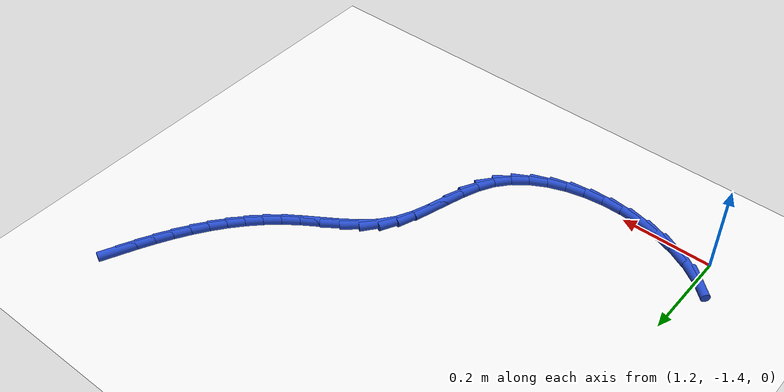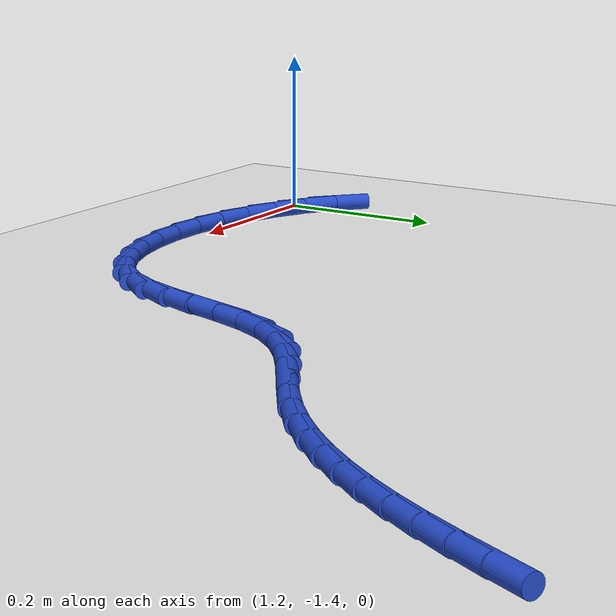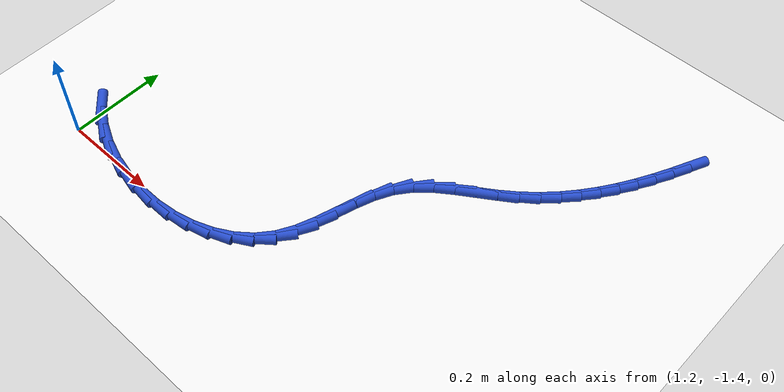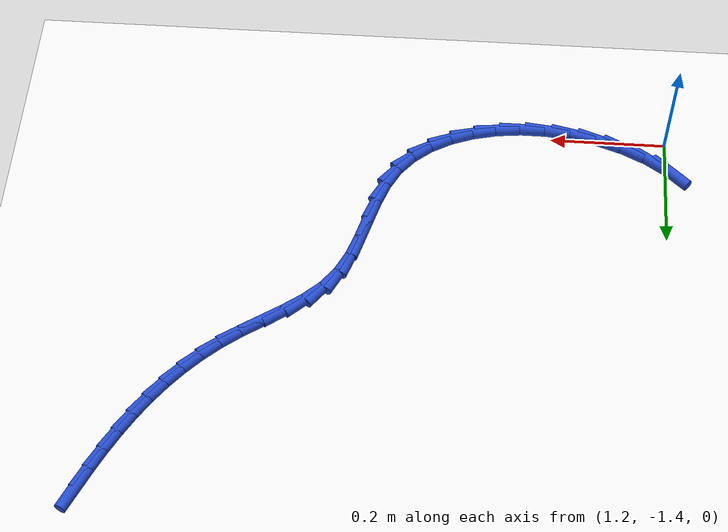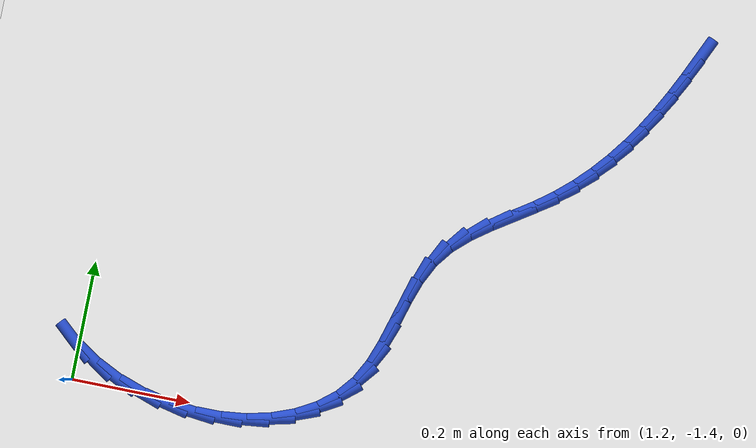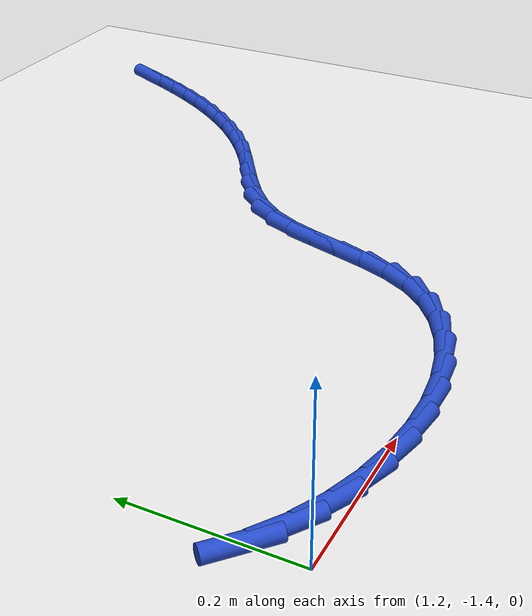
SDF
<sdf version="1.6">
 <world name="default">
  <model name="ground_plane">
   <static>1</static>
   <link name="link">
    <collision name="collision">
     <geometry><plane><normal>0 0 1</normal><size>100 100</size></plane></geometry>
     <surface><friction><ode><mu>100</mu><mu2>50</mu2></ode></friction></surface>
    </collision>
    <visual name="visual">
     <cast_shadows>0</cast_shadows>
     <geometry><plane><normal>0 0 1</normal><size>100 100</size></plane></geometry>
     <material>
      <script><uri>file://media/materials/scripts/gazebo.material</uri><name>Gazebo/WhiteGlow</name></script>
     </material>
    </visual>
   </link>
  </model>
  <model name="line">
   <link name="link_116">
    <pose>2.1239932550588185 -0.6725731313570082 0.01 0 1.57 1.1380755817345747</pose>
    <collision name="collision">
     <geometry><cylinder><radius>0.01</radius><length>0.08</length></cylinder></geometry>
    </collision>
    <visual name="visual">
     <material>
      <script><name>Gazebo/Blue</name><uri>file://media/materials/scripts/gazebo.material</uri></script>
     </material>
     <geometry><cylinder><radius>0.01</radius><length>0.08</length></cylinder></geometry>
    </visual>
   </link>
   <link name="link_117">
    <pose>2.107798793973246 -0.7076322883685389 0.01 0 1.57 1.1090206336675479</pose>
    <collision name="collision">
     <geometry><cylinder><radius>0.01</radius><length>0.08</length></cylinder></geometry>
    </collision>
    <visual name="visual">
     <material>
      <script><name>Gazebo/Blue</name><uri>file://media/materials/scripts/gazebo.material</uri></script>
     </material>
     <geometry><cylinder><radius>0.01</radius><length>0.08</length></cylinder></geometry>
    </visual>
   </link>
   <link name="link_118">
    <pose>2.0908712516702996 -0.7416464032183362 0.01 0 1.57 1.072852213556837</pose>
    <collision name="collision">
     <geometry><cylinder><radius>0.01</radius><length>0.08</length></cylinder></geometry>
    </collision>
    <visual name="visual">
     <material>
      <script><name>Gazebo/Blue</name><uri>file://media/materials/scripts/gazebo.material</uri></script>
     </material>
     <geometry><cylinder><radius>0.01</radius><length>0.08</length></cylinder></geometry>
    </visual>
   </link>
   <link name="link_119">
    <pose>2.072983260021669 -0.774550756353926 0.01 0 1.57 1.029499335430065</pose>
    <collision name="collision">
     <geometry><cylinder><radius>0.01</radius><length>0.08</length></cylinder></geometry>
    </collision>
    <visual name="visual">
     <material>
      <script><name>Gazebo/Blue</name><uri>file://media/materials/scripts/gazebo.material</uri></script>
     </material>
     <geometry><cylinder><radius>0.01</radius><length>0.08</length></cylinder></geometry>
    </visual>
   </link>
   <link name="link_120">
    <pose>2.0539074508990414 -0.8062806282228336 0.01 0 1.57 0.9790819455145351</pose>
    <collision name="collision">
     <geometry><cylinder><radius>0.01</radius><length>0.08</length></cylinder></geometry>
    </collision>
    <visual name="visual">
     <material>
      <script><name>Gazebo/Blue</name><uri>file://media/materials/scripts/gazebo.material</uri></script>
     </material>
     <geometry><cylinder><radius>0.01</radius><length>0.08</length></cylinder></geometry>
    </visual>
   </link>
   <link name="link_121">
    <pose>2.033416456174107 -0.8367712992725848 0.01 0 1.57 0.9219774723601423</pose>
    <collision name="collision">
     <geometry><cylinder><radius>0.01</radius><length>0.08</length></cylinder></geometry>
    </collision>
    <visual name="visual">
     <material>
      <script><name>Gazebo/Blue</name><uri>file://media/materials/scripts/gazebo.material</uri></script>
     </material>
     <geometry><cylinder><radius>0.01</radius><length>0.08</length></cylinder></geometry>
    </visual>
   </link>
   <link name="link_122">
    <pose>2.011282907718555 -0.8659580499507049 0.01 0 1.57 0.858876677376502</pose>
    <collision name="collision">
     <geometry><cylinder><radius>0.01</radius><length>0.08</length></cylinder></geometry>
    </collision>
    <visual name="visual">
     <material>
      <script><name>Gazebo/Blue</name><uri>file://media/materials/scripts/gazebo.material</uri></script>
     </material>
     <geometry><cylinder><radius>0.01</radius><length>0.08</length></cylinder></geometry>
    </visual>
   </link>
   <link name="link_123">
    <pose>1.9872794374040736 -0.8937761607047192 0.01 0 1.57 0.7908089557423772</pose>
    <collision name="collision">
     <geometry><cylinder><radius>0.01</radius><length>0.08</length></cylinder></geometry>
    </collision>
    <visual name="visual">
     <material>
      <script><name>Gazebo/Blue</name><uri>file://media/materials/scripts/gazebo.material</uri></script>
     </material>
     <geometry><cylinder><radius>0.01</radius><length>0.08</length></cylinder></geometry>
    </visual>
   </link>
   <link name="link_124">
    <pose>1.9611786771023536 -0.9201609119821539 0.01 0 1.57 0.7191174651919641</pose>
    <collision name="collision">
     <geometry><cylinder><radius>0.01</radius><length>0.08</length></cylinder></geometry>
    </collision>
    <visual name="visual">
     <material>
      <script><name>Gazebo/Blue</name><uri>file://media/materials/scripts/gazebo.material</uri></script>
     </material>
     <geometry><cylinder><radius>0.01</radius><length>0.08</length></cylinder></geometry>
    </visual>
   </link>
   <link name="link_125">
    <pose>1.9327532586850824 -0.9450475842305339 0.01 0 1.57 0.6454295224816669</pose>
    <collision name="collision">
     <geometry><cylinder><radius>0.01</radius><length>0.08</length></cylinder></geometry>
    </collision>
    <visual name="visual">
     <material>
      <script><name>Gazebo/Blue</name><uri>file://media/materials/scripts/gazebo.material</uri></script>
     </material>
     <geometry><cylinder><radius>0.01</radius><length>0.08</length></cylinder></geometry>
    </visual>
   </link>
   <link name="link_126">
    <pose>1.9017777347263474 -0.968372696288888 0.01 0 1.57 0.5871794453107585</pose>
    <collision name="collision">
     <geometry><cylinder><radius>0.01</radius><length>0.08</length></cylinder></geometry>
    </collision>
    <visual name="visual">
     <material>
      <script><name>Gazebo/Blue</name><uri>file://media/materials/scripts/gazebo.material</uri></script>
     </material>
     <geometry><cylinder><radius>0.01</radius><length>0.08</length></cylinder></geometry>
    </visual>
   </link>
   <link name="link_127">
    <pose>1.868607116459382 -0.990447023347555 0.01 0 1.57 0.5801430893037856</pose>
    <collision name="collision">
     <geometry><cylinder><radius>0.01</radius><length>0.08</length></cylinder></geometry>
    </collision>
    <visual name="visual">
     <material>
      <script><name>Gazebo/Blue</name><uri>file://media/materials/scripts/gazebo.material</uri></script>
     </material>
     <geometry><cylinder><radius>0.01</radius><length>0.08</length></cylinder></geometry>
    </visual>
   </link>
   <link name="link_128">
    <pose>1.8349891578512751 -1.012479324985035 0.01 0 1.57 0.628308352392877</pose>
    <collision name="collision">
     <geometry><cylinder><radius>0.01</radius><length>0.08</length></cylinder></geometry>
    </collision>
    <visual name="visual">
     <material>
      <script><name>Gazebo/Blue</name><uri>file://media/materials/scripts/gazebo.material</uri></script>
     </material>
     <geometry><cylinder><radius>0.01</radius><length>0.08</length></cylinder></geometry>
    </visual>
   </link>
   <link name="link_129">
    <pose>1.8028761889584788 -1.0358102631979658 0.01 0 1.57 0.7362776387020011</pose>
    <collision name="collision">
     <geometry><cylinder><radius>0.01</radius><length>0.08</length></cylinder></geometry>
    </collision>
    <visual name="visual">
     <material>
      <script><name>Gazebo/Blue</name><uri>file://media/materials/scripts/gazebo.material</uri></script>
     </material>
     <geometry><cylinder><radius>0.01</radius><length>0.08</length></cylinder></geometry>
    </visual>
   </link>
   <link name="link_130">
    <pose>1.7742205398374482 -1.0617804999829874 0.01 0 1.57 0.9103407091760679</pose>
    <collision name="collision">
     <geometry><cylinder><radius>0.01</radius><length>0.08</length></cylinder></geometry>
    </collision>
    <visual name="visual">
     <material>
      <script><name>Gazebo/Blue</name><uri>file://media/materials/scripts/gazebo.material</uri></script>
     </material>
     <geometry><cylinder><radius>0.01</radius><length>0.08</length></cylinder></geometry>
    </visual>
   </link>
   <link name="link_131">
    <pose>1.7509613878329795 -1.0917214079872386 0.01 0 1.57 1.104479815964058</pose>
    <collision name="collision">
     <geometry><cylinder><radius>0.01</radius><length>0.08</length></cylinder></geometry>
    </collision>
    <visual name="visual">
     <material>
      <script><name>Gazebo/Blue</name><uri>file://media/materials/scripts/gazebo.material</uri></script>
     </material>
     <geometry><cylinder><radius>0.01</radius><length>0.08</length></cylinder></geometry>
    </visual>
   </link>
   <link name="link_132">
    <pose>1.7336983757005673 -1.1260182884094774 0.01 0 1.57 1.2319267778283103</pose>
    <collision name="collision">
     <geometry><cylinder><radius>0.01</radius><length>0.08</length></cylinder></geometry>
    </collision>
    <visual name="visual">
     <material>
      <script><name>Gazebo/Blue</name><uri>file://media/materials/scripts/gazebo.material</uri></script>
     </material>
     <geometry><cylinder><radius>0.01</radius><length>0.08</length></cylinder></geometry>
    </visual>
   </link>
   <link name="link_133">
    <pose>1.7205551395433147 -1.1633077162725682 0.01 0 1.57 1.2900644213674926</pose>
    <collision name="collision">
     <geometry><cylinder><radius>0.01</radius><length>0.08</length></cylinder></geometry>
    </collision>
    <visual name="visual">
     <material>
      <script><name>Gazebo/Blue</name><uri>file://media/materials/scripts/gazebo.material</uri></script>
     </material>
     <geometry><cylinder><radius>0.01</radius><length>0.08</length></cylinder></geometry>
    </visual>
   </link>
   <link name="link_134">
    <pose>1.7093876132005612 -1.202037196850497 0.01 0 1.57 1.2852709694296485</pose>
    <collision name="collision">
     <geometry><cylinder><radius>0.01</radius><length>0.08</length></cylinder></geometry>
    </collision>
    <visual name="visual">
     <material>
      <script><name>Gazebo/Blue</name><uri>file://media/materials/scripts/gazebo.material</uri></script>
     </material>
     <geometry><cylinder><radius>0.01</radius><length>0.08</length></cylinder></geometry>
    </visual>
   </link>
   <link name="link_135">
    <pose>1.6980517305116476 -1.2406542354172505 0.01 0 1.57 1.2169871541361925</pose>
    <collision name="collision">
     <geometry><cylinder><radius>0.01</radius><length>0.08</length></cylinder></geometry>
    </collision>
    <visual name="visual">
     <material>
      <script><name>Gazebo/Blue</name><uri>file://media/materials/scripts/gazebo.material</uri></script>
     </material>
     <geometry><cylinder><radius>0.01</radius><length>0.08</length></cylinder></geometry>
    </visual>
   </link>
   <link name="link_136">
    <pose>1.6844034253159135 -1.2776063372468145 0.01 0 1.57 1.078235452408653</pose>
    <collision name="collision">
     <geometry><cylinder><radius>0.01</radius><length>0.08</length></cylinder></geometry>
    </collision>
    <visual name="visual">
     <material>
      <script><name>Gazebo/Blue</name><uri>file://media/materials/scripts/gazebo.material</uri></script>
     </material>
     <geometry><cylinder><radius>0.01</radius><length>0.08</length></cylinder></geometry>
    </visual>
   </link>
   <link name="link_137">
    <pose>1.6662986314526993 -1.3113410076131757 0.01 0 1.57 0.8782493288104728</pose>
    <collision name="collision">
     <geometry><cylinder><radius>0.01</radius><length>0.08</length></cylinder></geometry>
    </collision>
    <visual name="visual">
     <material>
      <script><name>Gazebo/Blue</name><uri>file://media/materials/scripts/gazebo.material</uri></script>
     </material>
     <geometry><cylinder><radius>0.01</radius><length>0.08</length></cylinder></geometry>
    </visual>
   </link>
   <link name="link_138">
    <pose>1.6420704578738075 -1.3405446988794871 0.01 0 1.57 0.6824081840597276</pose>
    <collision name="collision">
     <geometry><cylinder><radius>0.01</radius><length>0.08</length></cylinder></geometry>
    </collision>
    <visual name="visual">
     <material>
      <script><name>Gazebo/Blue</name><uri>file://media/materials/scripts/gazebo.material</uri></script>
     </material>
     <geometry><cylinder><radius>0.01</radius><length>0.08</length></cylinder></geometry>
    </visual>
   </link>
   <link name="link_139">
    <pose>1.6120778100447357 -1.3649182880248347 0.01 0 1.57 0.5103030014091348</pose>
    <collision name="collision">
     <geometry><cylinder><radius>0.01</radius><length>0.08</length></cylinder></geometry>
    </collision>
    <visual name="visual">
     <material>
      <script><name>Gazebo/Blue</name><uri>file://media/materials/scripts/gazebo.material</uri></script>
     </material>
     <geometry><cylinder><radius>0.01</radius><length>0.08</length></cylinder></geometry>
    </visual>
   </link>
   <link name="link_140">
    <pose>1.5772170904196308 -1.384431805505758 0.01 0 1.57 0.36015467550813973</pose>
    <collision name="collision">
     <geometry><cylinder><radius>0.01</radius><length>0.08</length></cylinder></geometry>
    </collision>
    <visual name="visual">
     <material>
      <script><name>Gazebo/Blue</name><uri>file://media/materials/scripts/gazebo.material</uri></script>
     </material>
     <geometry><cylinder><radius>0.01</radius><length>0.08</length></cylinder></geometry>
    </visual>
   </link>
   <link name="link_141">
    <pose>1.5383847054114235 -1.3990552837611718 0.01 0 1.57 0.22753449866234254</pose>
    <collision name="collision">
     <geometry><cylinder><radius>0.01</radius><length>0.08</length></cylinder></geometry>
    </collision>
    <visual name="visual">
     <material>
      <script><name>Gazebo/Blue</name><uri>file://media/materials/scripts/gazebo.material</uri></script>
     </material>
     <geometry><cylinder><radius>0.01</radius><length>0.08</length></cylinder></geometry>
    </visual>
   </link>
   <link name="link_142">
    <pose>1.4964770614330458 -1.4087587552299916 0.01 0 1.57 0.10740712414305492</pose>
    <collision name="collision">
     <geometry><cylinder><radius>0.01</radius><length>0.08</length></cylinder></geometry>
    </collision>
    <visual name="visual">
     <material>
      <script><name>Gazebo/Blue</name><uri>file://media/materials/scripts/gazebo.material</uri></script>
     </material>
     <geometry><cylinder><radius>0.01</radius><length>0.08</length></cylinder></geometry>
    </visual>
   </link>
   <link name="link_143">
    <pose>1.4523905648974307 -1.4135122523511334 0.01 0 1.57 -0.004991143585948332</pose>
    <collision name="collision">
     <geometry><cylinder><radius>0.01</radius><length>0.08</length></cylinder></geometry>
    </collision>
    <visual name="visual">
     <material>
      <script><name>Gazebo/Blue</name><uri>file://media/materials/scripts/gazebo.material</uri></script>
     </material>
     <geometry><cylinder><radius>0.01</radius><length>0.08</length></cylinder></geometry>
    </visual>
   </link>
   <link name="link_144">
    <pose>1.407021622217509 -1.4132858075635113 0.01 0 1.57 -0.11394762478649441</pose>
    <collision name="collision">
     <geometry><cylinder><radius>0.01</radius><length>0.08</length></cylinder></geometry>
    </collision>
    <visual name="visual">
     <material>
      <script><name>Gazebo/Blue</name><uri>file://media/materials/scripts/gazebo.material</uri></script>
     </material>
     <geometry><cylinder><radius>0.01</radius><length>0.08</length></cylinder></geometry>
    </visual>
   </link>
   <link name="link_145">
    <pose>1.3612666398062139 -1.4080494533060415 0.01 0 1.57 -0.22333713275631986</pose>
    <collision name="collision">
     <geometry><cylinder><radius>0.01</radius><length>0.08</length></cylinder></geometry>
    </collision>
    <visual name="visual">
     <material>
      <script><name>Gazebo/Blue</name><uri>file://media/materials/scripts/gazebo.material</uri></script>
     </material>
     <geometry><cylinder><radius>0.01</radius><length>0.08</length></cylinder></geometry>
    </visual>
   </link>
   <link name="link_146">
    <pose>1.3160220240764768 -1.3977732220176387 0.01 0 1.57 -0.33673234869749313</pose>
    <collision name="collision">
     <geometry><cylinder><radius>0.01</radius><length>0.08</length></cylinder></geometry>
    </collision>
    <visual name="visual">
     <material>
      <script><name>Gazebo/Blue</name><uri>file://media/materials/scripts/gazebo.material</uri></script>
     </material>
     <geometry><cylinder><radius>0.01</radius><length>0.08</length></cylinder></geometry>
    </visual>
   </link>
   <link name="link_147">
    <pose>1.2721841814412307 -1.3824271461372182 0.01 0 1.57 -0.4574371326009487</pose>
    <collision name="collision">
     <geometry><cylinder><radius>0.01</radius><length>0.08</length></cylinder></geometry>
    </collision>
    <visual name="visual">
     <material>
      <script><name>Gazebo/Blue</name><uri>file://media/materials/scripts/gazebo.material</uri></script>
     </material>
     <geometry><cylinder><radius>0.01</radius><length>0.08</length></cylinder></geometry>
    </visual>
   </link>
   <link name="link_148">
    <pose>1.230649518313407 -1.3619812581036956 0.01 0 1.57 -0.5883447436564921</pose>
    <collision name="collision">
     <geometry><cylinder><radius>0.01</radius><length>0.08</length></cylinder></geometry>
    </collision>
    <visual name="visual">
     <material>
      <script><name>Gazebo/Blue</name><uri>file://media/materials/scripts/gazebo.material</uri></script>
     </material>
     <geometry><cylinder><radius>0.01</radius><length>0.08</length></cylinder></geometry>
    </visual>
   </link>
   <link name="link_149">
    <pose>1.1923144411059377 -1.336405590355986 0.01 0 1.57 -0.7315265539695773</pose>
    <collision name="collision">
     <geometry><cylinder><radius>0.01</radius><length>0.08</length></cylinder></geometry>
    </collision>
    <visual name="visual">
     <material>
      <script><name>Gazebo/Blue</name><uri>file://media/materials/scripts/gazebo.material</uri></script>
     </material>
     <geometry><cylinder><radius>0.01</radius><length>0.08</length></cylinder></geometry>
    </visual>
   </link>
  </model>
 </world>
</sdf>
